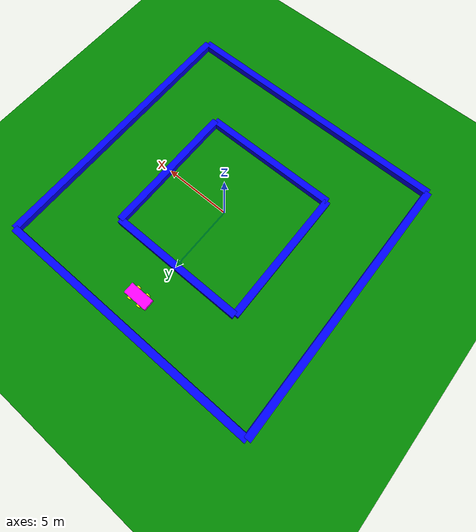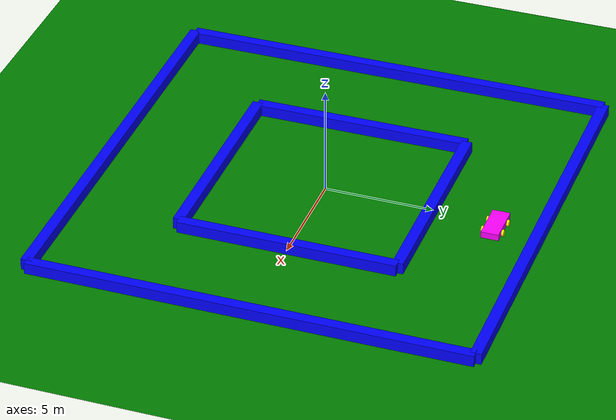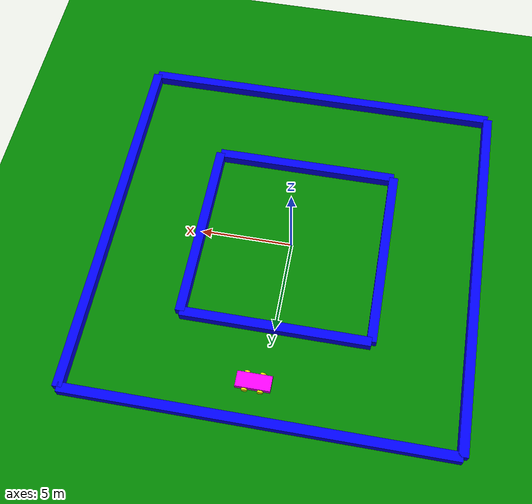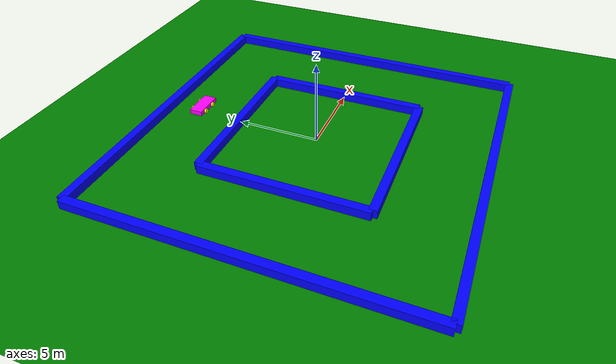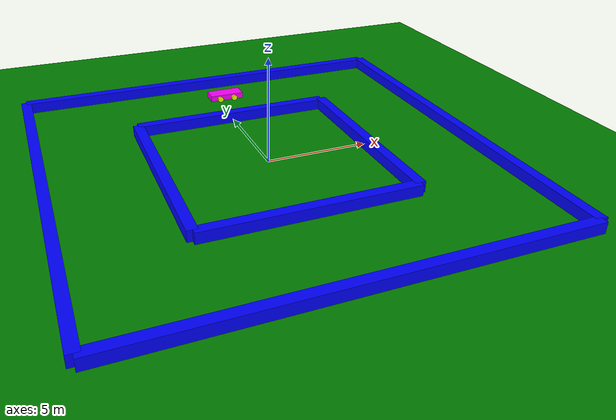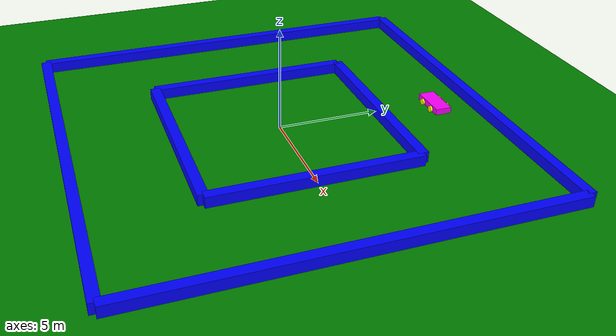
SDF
<sdf version="1.9">
 <world name="car_world">
  <physics name="1ms" type="ignored">
   <max_step_size>0.001</max_step_size>
   <real_time_factor>1.0</real_time_factor>
  </physics>
  <plugin filename="gz-sim-physics-system" name="gz::sim::systems::Physics"/>
  <plugin filename="gz-sim-user-commands-system" name="gz::sim::systems::UserCommands"/>
  <plugin filename="gz-sim-scene-broadcaster-system" name="gz::sim::systems::SceneBroadcaster"/>
  <plugin filename="libignition-gazebo-imu-system.so" name="ignition::gazebo::systems::Imu"/>
  <plugin filename="libignition-gazebo-contact-system.so" name="ignition::gazebo::systems::Contact"/>
  <light type="directional" name="sun">
   <pose>0 0 10 0 0 0</pose>
   <diffuse>0.8 0.8 0.8 1</diffuse>
   <specular>0.2 0.2 0.2 1</specular>
   <attenuation>
    <range>1000</range>
    <constant>0.9</constant>
    <linear>0.01</linear>
    <quadratic>0.001</quadratic>
   </attenuation>
   <direction>-0.5 0.1 -0.9</direction>
  </light>
  <model name="ground_plane">
   <static>true</static>
   <link name="link">
    <collision name="collision"><geometry><plane><normal>0 0 1</normal></plane></geometry></collision>
    <visual name="visual">
     <geometry><plane><normal>0 0 1</normal><size>100 100</size></plane></geometry>
     <material><ambient>0 0.5 0 1</ambient><diffuse>0 0.5 0 1</diffuse><specular>0 0.5 0 1</specular></material>
    </visual>
    <sensor name="sensor_contact" type="contact"><contact><collision>collision</collision></contact></sensor>
   </link>
  </model>
  <model name="vehicle_blue" canonical_link="chassis">
   <pose relative_to="world">0 8 0 0 0 0</pose>
   <frame name="lidar_frame" attached_to="chassis"><pose>0.8 0 0.5 0 0 0</pose></frame>
   <link name="chassis">
    <pose relative_to="__model__">0.5 0 0.2 0 0 0</pose>
    <inertial>
     <mass>1.14395</mass>
     <inertia>
      <ixx>0.095329</ixx>
      <ixy>0</ixy>
      <ixz>0</ixz>
      <iyy>0.381317</iyy>
      <iyz>0</iyz>
      <izz>0.476646</izz>
     </inertia>
    </inertial>
    <visual name="visual">
     <geometry><box><size>1.8 0.8 0.3</size></box></geometry>
     <material>
      <ambient>1.0 0.0 1.0 1</ambient>
      <diffuse>1.0 0.0 1.0 1</diffuse>
      <specular>1.0 0.0 1.0 1</specular>
     </material>
    </visual>
    <collision name="collision">
     <geometry>
      <box>
       <sensor name="sensor_contact" type="contact"><contact><collision>collision</collision></contact></sensor>
       <size>1.8 0.8 0.3</size>
      </box>
     </geometry>
    </collision>
    <sensor name="imu_sensor" type="imu">
     <always_on>1</always_on>
     <update_rate>1</update_rate>
     <visualize>true</visualize>
     <topic>imu</topic>
    </sensor>
    <sensor name="gpu_lidar" type="gpu_lidar">
     <pose relative_to="lidar_frame">0 0 0 0 0 0</pose>
     <topic>lidar</topic>
     <update_rate>10</update_rate>
     <ray>
      <scan>
       <horizontal>
        <samples>640</samples>
        <resolution>1</resolution>
        <min_angle>-1.396263</min_angle>
        <max_angle>1.396263</max_angle>
       </horizontal>
       <vertical>
        <samples>1</samples>
        <resolution>0.01</resolution>
        <min_angle>0</min_angle>
        <max_angle>0</max_angle>
       </vertical>
      </scan>
      <range><min>0.08</min><max>10.0</max><resolution>0.01</resolution></range>
     </ray>
     <always_on>1</always_on>
     <visualize>true</visualize>
     <sensor name="sensor_contact" type="contact"><contact><collision>collision</collision></contact></sensor>
    </sensor>
   </link>
   <link name="left_wheel1">
    <pose relative_to="chassis">-0.4 0.46 -0.05 -1.5707 0 0</pose>
    <inertial>
     <mass>1</mass>
     <inertia><ixx>0.043333</ixx><ixy>0</ixy><ixz>0</ixz><iyy>0.043333</iyy><iyz>0</iyz><izz>0.08</izz></inertia>
    </inertial>
    <visual name="visual">
     <geometry><cylinder><radius>0.15</radius><length>0.10</length></cylinder></geometry>
     <material>
      <ambient>1.0 1.0 0.0 1</ambient>
      <diffuse>1.0 1.0 0.0 1</diffuse>
      <specular>1.0 1.0 0.0 1</specular>
     </material>
    </visual>
    <collision name="collision">
     <geometry><cylinder><radius>0.15</radius><length>0.10</length></cylinder></geometry>
    </collision>
   </link>
   <link name="right_wheel1">
    <pose relative_to="chassis">-0.4 -0.46 -0.05 -1.5707 0 0</pose>
    <inertial>
     <mass>1</mass>
     <inertia><ixx>0.043333</ixx><ixy>0</ixy><ixz>0</ixz><iyy>0.043333</iyy><iyz>0</iyz><izz>0.08</izz></inertia>
    </inertial>
    <visual name="visual">
     <geometry><cylinder><radius>0.15</radius><length>0.10</length></cylinder></geometry>
     <material>
      <ambient>1.0 1.0 0.0 1</ambient>
      <diffuse>1.0 1.0 0.0 1</diffuse>
      <specular>1.0 1.0 0.0 1</specular>
     </material>
    </visual>
    <collision name="collision">
     <geometry><cylinder><radius>0.15</radius><length>0.10</length></cylinder></geometry>
    </collision>
   </link>
   <link name="right_wheel2">
    <pose relative_to="chassis">0.4 -0.46 -0.05 -1.5707 0 0</pose>
    <inertial>
     <mass>1</mass>
     <inertia><ixx>0.043333</ixx><ixy>0</ixy><ixz>0</ixz><iyy>0.043333</iyy><iyz>0</iyz><izz>0.08</izz></inertia>
    </inertial>
    <visual name="visual">
     <geometry><cylinder><radius>0.15</radius><length>0.10</length></cylinder></geometry>
     <material>
      <ambient>1.0 1.0 0.0 1</ambient>
      <diffuse>1.0 1.0 0.0 1</diffuse>
      <specular>1.0 1.0 0.0 1</specular>
     </material>
    </visual>
    <collision name="collision">
     <geometry><cylinder><radius>0.15</radius><length>0.10</length></cylinder></geometry>
    </collision>
    <sensor name="sensor_contact" type="contact"><contact><collision>collision</collision></contact></sensor>
   </link>
   <link name="left_wheel2">
    <pose relative_to="chassis">0.4 0.46 -0.05 -1.5707 0 0</pose>
    <inertial>
     <mass>1</mass>
     <inertia><ixx>0.043333</ixx><ixy>0</ixy><ixz>0</ixz><iyy>0.043333</iyy><iyz>0</iyz><izz>0.08</izz></inertia>
    </inertial>
    <visual name="visual">
     <geometry><cylinder><radius>0.15</radius><length>0.10</length></cylinder></geometry>
     <material>
      <ambient>1.0 1.0 0.0 1</ambient>
      <diffuse>1.0 1.0 0.0 1</diffuse>
      <specular>1.0 1.0 0.0 1</specular>
     </material>
    </visual>
    <collision name="collision">
     <geometry><cylinder><radius>0.15</radius><length>0.10</length></cylinder></geometry>
    </collision>
   </link>
   <joint name="left_wheel1_joint" type="revolute">
    <pose relative_to="left_wheel1"/>
    <parent>chassis</parent>
    <child>left_wheel1</child>
    <axis>
     <xyz expressed_in="__model__">0 1 0</xyz>
     <limit><lower>-1.79769e+308</lower><upper>1.79769e+308</upper></limit>
    </axis>
   </joint>
   <joint name="left_wheel2_joint" type="revolute">
    <pose relative_to="left_wheel2"/>
    <parent>chassis</parent>
    <child>left_wheel2</child>
    <axis>
     <xyz expressed_in="__model__">0 1 0</xyz>
     <limit><lower>-1.79769e+308</lower><upper>1.79769e+308</upper></limit>
    </axis>
   </joint>
   <joint name="right_wheel1_joint" type="revolute">
    <pose relative_to="right_wheel1"/>
    <parent>chassis</parent>
    <child>right_wheel1</child>
    <axis>
     <xyz expressed_in="__model__">0 1 0</xyz>
     <limit><lower>-1.79769e+308</lower><upper>1.79769e+308</upper></limit>
    </axis>
   </joint>
   <joint name="right_wheel2_joint" type="revolute">
    <pose relative_to="right_wheel2"/>
    <parent>chassis</parent>
    <child>right_wheel2</child>
    <axis>
     <xyz expressed_in="__model__">0 1 0</xyz>
     <limit><lower>-1.79769e+308</lower><upper>1.79769e+308</upper></limit>
    </axis>
   </joint>
   <plugin filename="libignition-gazebo-diff-drive-system.so" name="ignition::gazebo::systems::DiffDrive">
    <left_joint>left_wheel1_joint</left_joint>
    <left_joint>left_wheel2_joint</left_joint>
    <right_joint>right_wheel1_joint</right_joint>
    <right_joint>right_wheel2_joint</right_joint>
    <wheel_separation>0.92</wheel_separation>
    <wheel_radius>0.15</wheel_radius>
    <odom_publish_frequency>1</odom_publish_frequency>
    <topic>cmd_vel</topic>
   </plugin>
  </model>
  <model name="wall_1">
   <static>true</static>
   <pose>-10 0 0 0 0 0</pose>
   <link name="box">
    <visual name="visual">
     <geometry><box><size>0.5 20.0 1.0</size></box></geometry>
     <material>
      <ambient>0.0 0.0 1.0 1</ambient>
      <diffuse>0.0 0.0 1.0 1</diffuse>
      <specular>0.0 0.0 1.0 1</specular>
     </material>
    </visual>
    <collision name="collision"><geometry><box><size>0.5 20.0 1.0</size></box></geometry></collision>
    <sensor name="sensor_contact" type="contact"><contact><collision>collision</collision></contact></sensor>
   </link>
   <plugin filename="libignition-gazebo-touchplugin-system.so" name="ignition::gazebo::systems::TouchPlugin">
    <target>vehicle_blue</target>
    <namespace>wall</namespace>
    <time>0.001</time>
    <enabled>true</enabled>
   </plugin>
  </model>
  <model name="wall_2">
   <static>true</static>
   <pose>10 0 0 0 0 0</pose>
   <link name="box">
    <visual name="visual">
     <geometry><box><size>0.5 20.0 1.0</size></box></geometry>
     <material>
      <ambient>0.0 0.0 1.0 1</ambient>
      <diffuse>0.0 0.0 1.0 1</diffuse>
      <specular>0.0 0.0 1.0 1</specular>
     </material>
    </visual>
    <collision name="collision"><geometry><box><size>0.5 20.0 1.0</size></box></geometry></collision>
    <sensor name="sensor_contact" type="contact"><contact><collision>collision</collision></contact></sensor>
   </link>
   <plugin filename="libignition-gazebo-touchplugin-system.so" name="ignition::gazebo::systems::TouchPlugin">
    <target>vehicle_blue</target>
    <namespace>wall</namespace>
    <time>0.001</time>
    <enabled>true</enabled>
   </plugin>
  </model>
  <model name="wall_3">
   <static>true</static>
   <pose>0 10 0 0 0 0</pose>
   <link name="box">
    <visual name="visual">
     <geometry><box><size>20 0.5 1.0</size></box></geometry>
     <material>
      <ambient>0.0 0.0 1.0 1</ambient>
      <diffuse>0.0 0.0 1.0 1</diffuse>
      <specular>0.0 0.0 1.0 1</specular>
     </material>
    </visual>
    <collision name="collision"><geometry><box><size>20 0.5 1.0</size></box></geometry></collision>
    <sensor name="sensor_contact" type="contact"><contact><collision>collision</collision></contact></sensor>
   </link>
   <plugin filename="libignition-gazebo-touchplugin-system.so" name="ignition::gazebo::systems::TouchPlugin">
    <target>vehicle_blue</target>
    <namespace>wall</namespace>
    <time>0.001</time>
    <enabled>true</enabled>
   </plugin>
  </model>
  <model name="wall_4">
   <static>true</static>
   <pose>0 -10 0 0 0 0</pose>
   <link name="box">
    <visual name="visual">
     <geometry><box><size>20 0.5 1.0</size></box></geometry>
     <material>
      <ambient>0.0 0.0 1.0 1</ambient>
      <diffuse>0.0 0.0 1.0 1</diffuse>
      <specular>0.0 0.0 1.0 1</specular>
     </material>
    </visual>
    <collision name="collision"><geometry><box><size>20 0.5 1.0</size></box></geometry></collision>
    <sensor name="sensor_contact" type="contact"><contact><collision>collision</collision></contact></sensor>
   </link>
   <plugin filename="libignition-gazebo-touchplugin-system.so" name="ignition::gazebo::systems::TouchPlugin">
    <target>vehicle_blue</target>
    <namespace>wall</namespace>
    <time>0.001</time>
    <enabled>true</enabled>
   </plugin>
  </model>
  <model name="wall_5">
   <static>true</static>
   <pose>0 5 0 0 0 0</pose>
   <link name="box">
    <visual name="visual">
     <geometry><box><size>10 0.5 1.0</size></box></geometry>
     <material>
      <ambient>0.0 0.0 1.0 1</ambient>
      <diffuse>0.0 0.0 1.0 1</diffuse>
      <specular>0.0 0.0 1.0 1</specular>
     </material>
    </visual>
    <collision name="collision"><geometry><box><size>10 0.5 1.0</size></box></geometry></collision>
    <sensor name="sensor_contact" type="contact"><contact><collision>collision</collision></contact></sensor>
   </link>
   <plugin filename="libignition-gazebo-touchplugin-system.so" name="ignition::gazebo::systems::TouchPlugin">
    <target>vehicle_blue</target>
    <namespace>wall</namespace>
    <time>0.001</time>
    <enabled>true</enabled>
   </plugin>
  </model>
  <model name="wall_6">
   <static>true</static>
   <pose>0 -5 0 0 0 0</pose>
   <link name="box">
    <visual name="visual">
     <geometry><box><size>10 0.5 1.0</size></box></geometry>
     <material>
      <ambient>0.0 0.0 1.0 1</ambient>
      <diffuse>0.0 0.0 1.0 1</diffuse>
      <specular>0.0 0.0 1.0 1</specular>
     </material>
    </visual>
    <collision name="collision"><geometry><box><size>10 0.5 1.0</size></box></geometry></collision>
    <sensor name="sensor_contact" type="contact"><contact><collision>collision</collision></contact></sensor>
   </link>
   <plugin filename="libignition-gazebo-touchplugin-system.so" name="ignition::gazebo::systems::TouchPlugin">
    <target>vehicle_blue</target>
    <namespace>wall</namespace>
    <time>0.001</time>
    <enabled>true</enabled>
   </plugin>
  </model>
  <model name="wall_7">
   <static>true</static>
   <pose>5 0 0 0 0 0</pose>
   <link name="box">
    <visual name="visual">
     <geometry><box><size>0.5 10 1.0</size></box></geometry>
     <material>
      <ambient>0.0 0.0 1.0 1</ambient>
      <diffuse>0.0 0.0 1.0 1</diffuse>
      <specular>0.0 0.0 1.0 1</specular>
     </material>
    </visual>
    <collision name="collision"><geometry><box><size>0.5 10 1.0</size></box></geometry></collision>
    <sensor name="sensor_contact" type="contact"><contact><collision>collision</collision></contact></sensor>
   </link>
   <plugin filename="libignition-gazebo-touchplugin-system.so" name="ignition::gazebo::systems::TouchPlugin">
    <target>vehicle_blue</target>
    <namespace>wall</namespace>
    <time>0.001</time>
    <enabled>true</enabled>
   </plugin>
  </model>
  <model name="wall_8">
   <static>true</static>
   <pose>-5 0 0 0 0 0</pose>
   <link name="box">
    <visual name="visual">
     <geometry><box><size>0.5 10 1.0</size></box></geometry>
     <material>
      <ambient>0.0 0.0 1.0 1</ambient>
      <diffuse>0.0 0.0 1.0 1</diffuse>
      <specular>0.0 0.0 1.0 1</specular>
     </material>
    </visual>
    <collision name="collision"><geometry><box><size>0.5 10 1.0</size></box></geometry></collision>
    <sensor name="sensor_contact" type="contact"><contact><collision>collision</collision></contact></sensor>
   </link>
   <plugin filename="libignition-gazebo-touchplugin-system.so" name="ignition::gazebo::systems::TouchPlugin">
    <target>vehicle_blue</target>
    <namespace>wall</namespace>
    <time>0.001</time>
    <enabled>true</enabled>
   </plugin>
  </model>
  <plugin filename="ignition-gazebo-triggered-publisher-system" name="ignition::gazebo::systems::TriggeredPublisher">
   <input type="ignition.msgs.Int32" topic="/keyboard/keypress"><match field="data">16777235</match></input>
   <output type="ignition.msgs.Twist" topic="/cmd_vel">linear: {x: 2.0}, angular: {z: 0.0}</output>
  </plugin>
  <plugin filename="ignition-gazebo-triggered-publisher-system" name="ignition::gazebo::systems::TriggeredPublisher">
   <input type="ignition.msgs.Int32" topic="/keyboard/keypress"><match field="data">16777237</match></input>
   <output type="ignition.msgs.Twist" topic="/cmd_vel">linear: {x: -2.0}, angular: {z: 0.0}</output>
  </plugin>
  <plugin filename="ignition-gazebo-triggered-publisher-system" name="ignition::gazebo::systems::TriggeredPublisher">
   <input type="ignition.msgs.Int32" topic="/keyboard/keypress"><match field="data">16777236</match></input>
   <output type="ignition.msgs.Twist" topic="/cmd_vel">linear: {x: 0.0}, angular: {z: -2.0}</output>
  </plugin>
  <plugin filename="ignition-gazebo-triggered-publisher-system" name="ignition::gazebo::systems::TriggeredPublisher">
   <input type="ignition.msgs.Int32" topic="/keyboard/keypress"><match field="data">16777234</match></input>
   <output type="ignition.msgs.Twist" topic="/cmd_vel">linear: {x: 0.0}, angular: {z: 2.0}</output>
  </plugin>
  <plugin filename="ignition-gazebo-triggered-publisher-system" name="ignition::gazebo::systems::TriggeredPublisher">
   <input type="ignition.msgs.Boolean" topic="/wall/touched"><match>data: true</match></input>
   <output type="ignition.msgs.Twist" topic="/cmd_vel">linear: {x: 0.0}, angular: {z: 0.0}</output>
  </plugin>
  <plugin filename="libignition-gazebo-sensors-system.so" name="ignition::gazebo::systems::Sensors">
   <render_engine>ogre2</render_engine>
  </plugin>
 </world>
</sdf>
